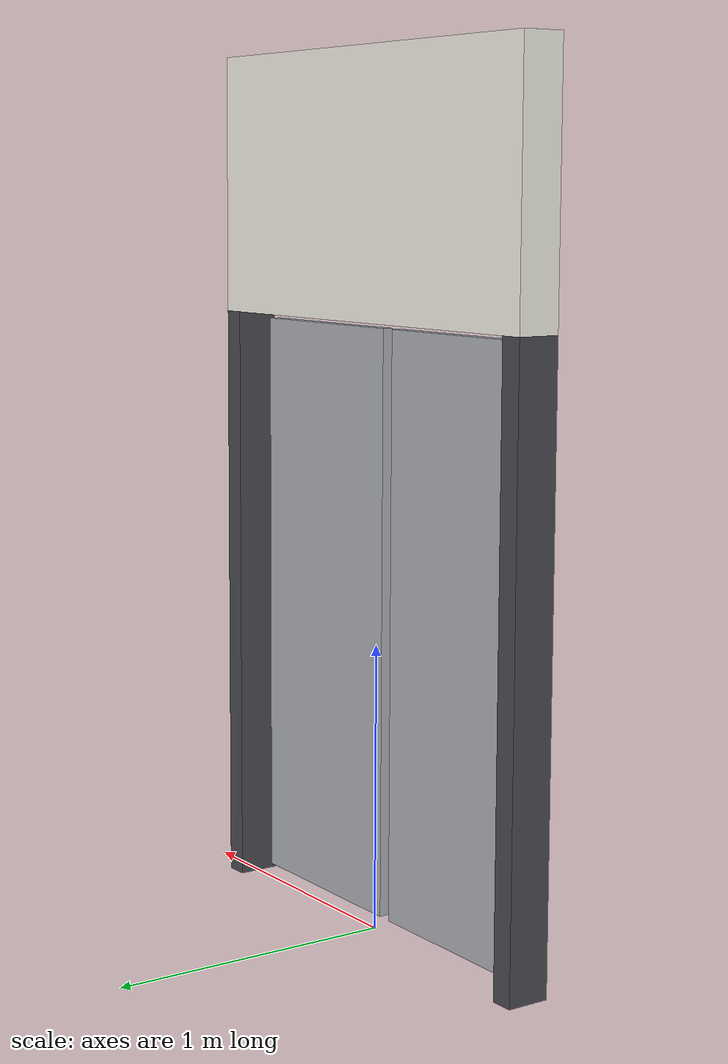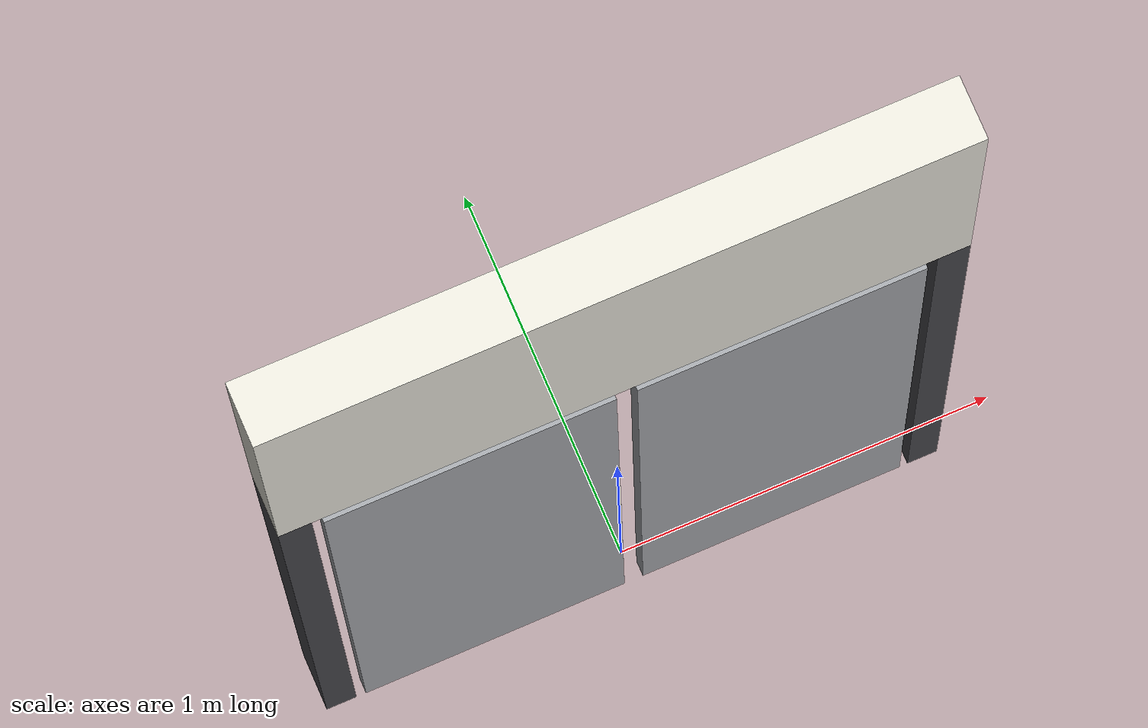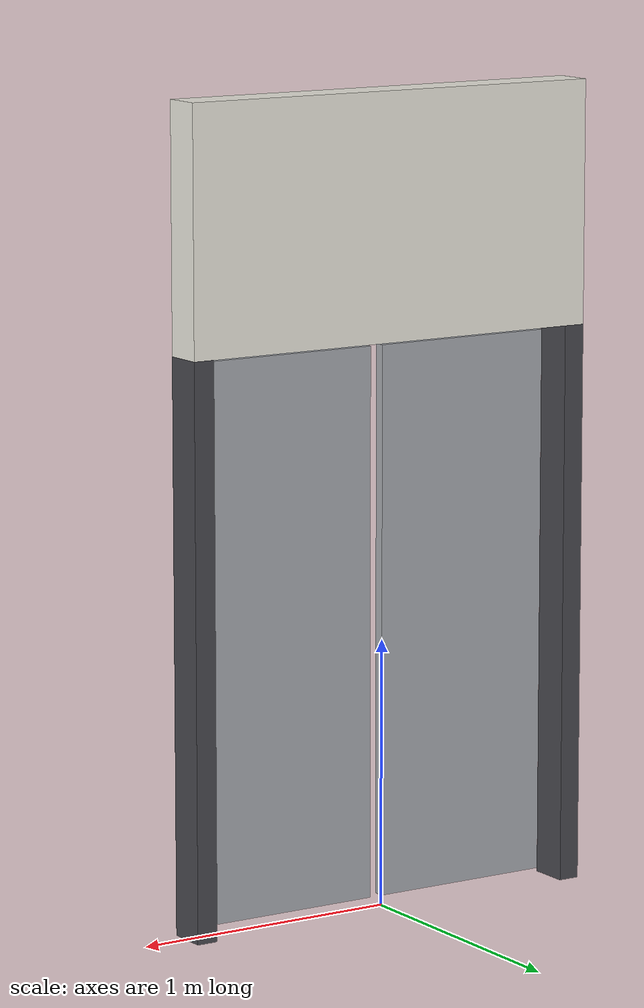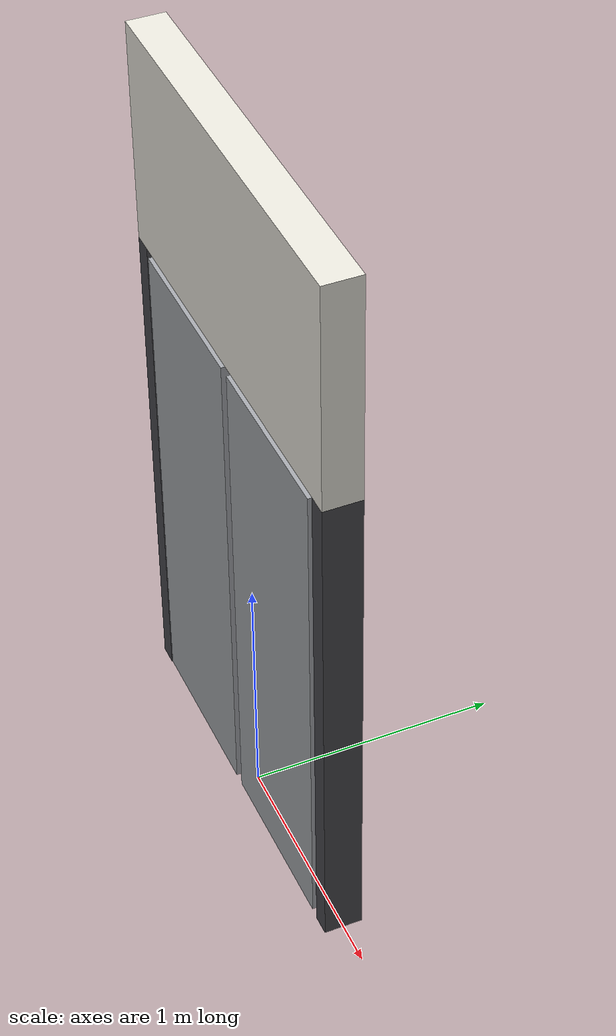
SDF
<?xml version="1.0" ?>
<sdf version="1.6">
  <model name="door_double">
    <static>true</static>
    <link name="frame_link">
      <collision name="jamb_left_col">
        <pose>-0.79 0 1.05 0 0 0</pose>
        <geometry><box><size>0.08 0.15 2.1</size></box></geometry>
      </collision>
      <visual name="jamb_left_vis">
        <pose>-0.79 0 1.05 0 0 0</pose>
        <geometry><box><size>0.08 0.15 2.1</size></box></geometry>
        <material><ambient>0.20 0.20 0.22 1</ambient><diffuse>0.28 0.28 0.30 1</diffuse><specular>0.30 0.30 0.32 1</specular></material>
      </visual>
      <collision name="jamb_right_col">
        <pose>0.79 0 1.05 0 0 0</pose>
        <geometry><box><size>0.08 0.15 2.1</size></box></geometry>
      </collision>
      <visual name="jamb_right_vis">
        <pose>0.79 0 1.05 0 0 0</pose>
        <geometry><box><size>0.08 0.15 2.1</size></box></geometry>
        <material><ambient>0.20 0.20 0.22 1</ambient><diffuse>0.28 0.28 0.30 1</diffuse><specular>0.30 0.30 0.32 1</specular></material>
      </visual>
      <collision name="head_col">
        <pose>0 0 2.55 0 0 0</pose>
        <geometry><box><size>1.66 0.15 0.9</size></box></geometry>
      </collision>
      <visual name="head_vis">
        <pose>0 0 2.55 0 0 0</pose>
        <geometry><box><size>1.66 0.15 0.9</size></box></geometry>
        <material><ambient>0.85 0.84 0.80 1</ambient><diffuse>0.92 0.91 0.87 1</diffuse><specular>0.05 0.05 0.05 1</specular></material>
      </visual>
    </link>

    <link name="leaf_left">
      <pose>-0.375 -0.06 1.05 0 0 0</pose>
      <collision name="col"><geometry><box><size>0.70 0.04 2.05</size></box></geometry></collision>
      <visual name="vis">
        <geometry><box><size>0.70 0.04 2.05</size></box></geometry>
        <!-- Brushed-metal look via high specular -->
        <material><ambient>0.55 0.56 0.58 1</ambient><diffuse>0.65 0.66 0.68 1</diffuse><specular>0.60 0.60 0.62 1</specular></material>
      </visual>
    </link>
    <link name="leaf_right">
      <pose>0.375 -0.06 1.05 0 0 0</pose>
      <collision name="col"><geometry><box><size>0.70 0.04 2.05</size></box></geometry></collision>
      <visual name="vis">
        <geometry><box><size>0.70 0.04 2.05</size></box></geometry>
        <material><ambient>0.55 0.56 0.58 1</ambient><diffuse>0.65 0.66 0.68 1</diffuse><specular>0.60 0.60 0.62 1</specular></material>
      </visual>
    </link>
  </model>
</sdf>
